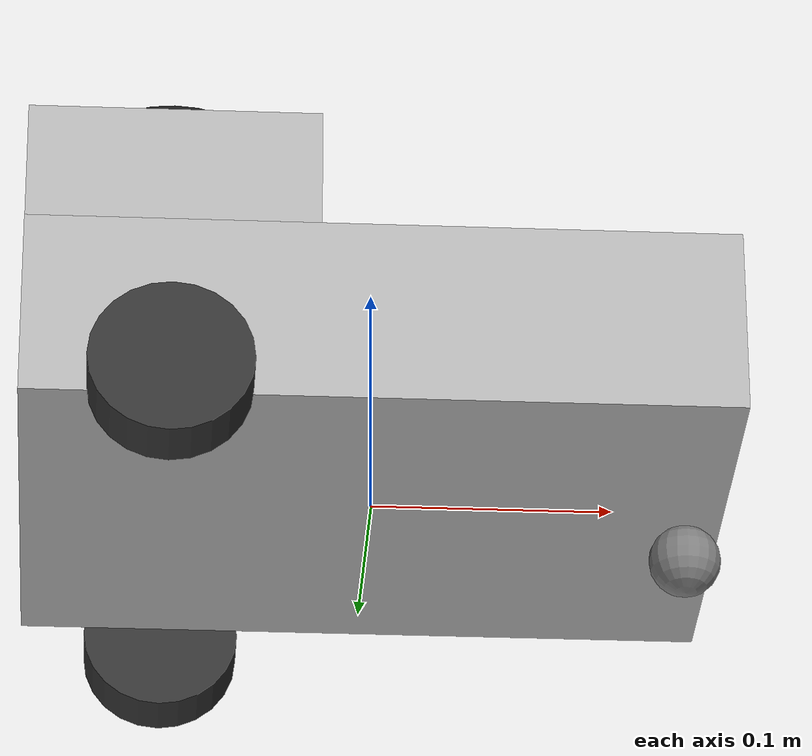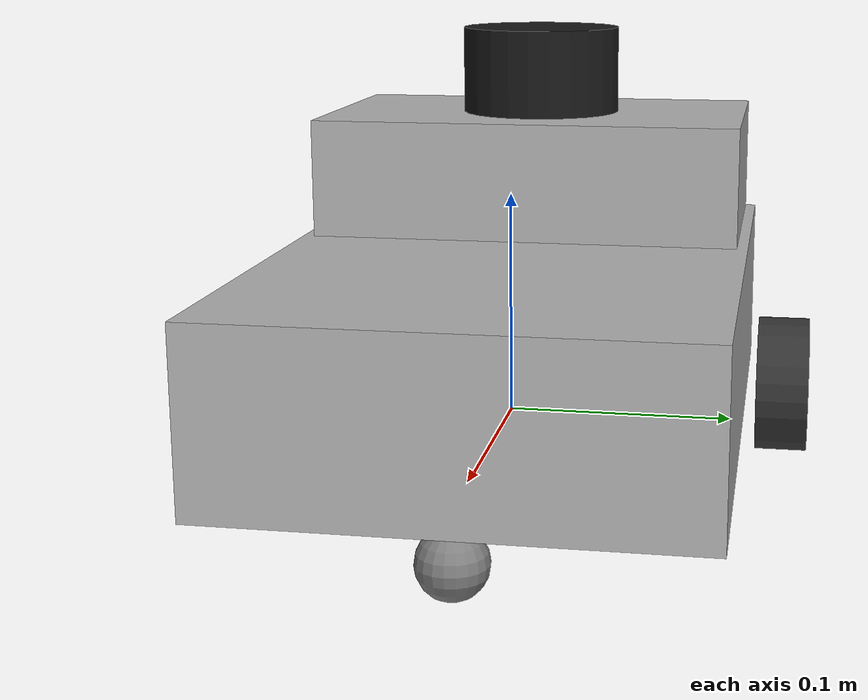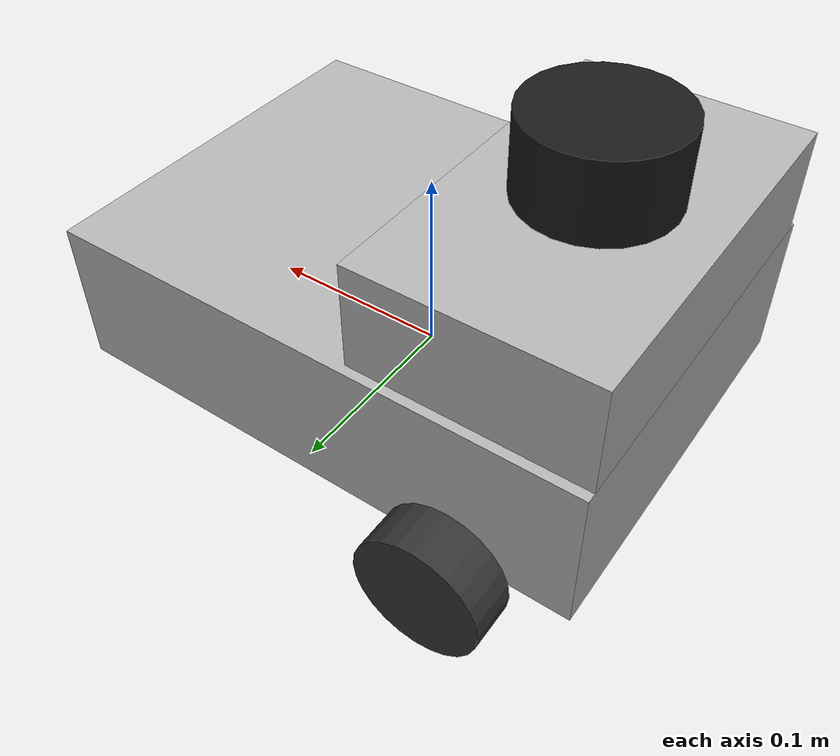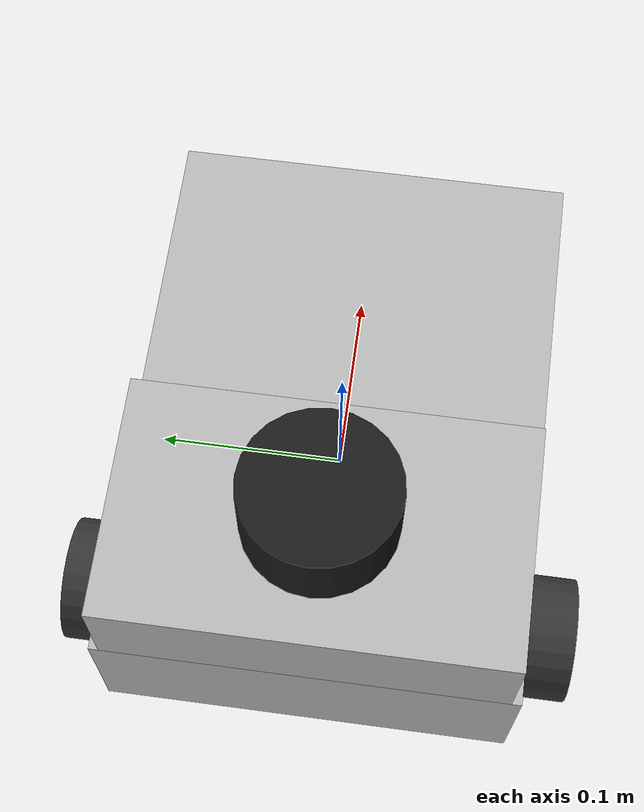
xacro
<?xml version="1.0"?>
<robot xmlns:xacro="http://www.ros.org/wiki/xacro" name="zyron">

  <!-- ─── Parameters ──────────────────────────────────────────── -->
  <xacro:arg name="is_sim" default="True"/>
  <xacro:arg name="mcu_serial_port" default="/dev/ttyUSB0"/>

  <!-- Robot dimensions (update to match your hardware) -->
  <xacro:property name="base_length"     value="0.290"/>
  <xacro:property name="base_width"      value="0.210"/>
  <xacro:property name="base_height"     value="0.080"/>
  <xacro:property name="wheel_radius"    value="0.033"/>
  <xacro:property name="wheel_width"     value="0.025"/>
  <xacro:property name="wheel_sep"       value="0.245"/>  <!-- centre-to-centre: inner wheel face is 5mm outside body wall -->
  <xacro:property name="caster_radius"   value="0.015"/>
  <xacro:property name="wheel_x_from_back" value="0.06"/>  <!-- wheels are 6cm from the back edge -->
  <!-- wheel x in base_link frame: back edge + offset -->
  <xacro:property name="wheel_x" value="${-base_length/2 + wheel_x_from_back}"/>

  <!-- Tower on top of base at the back (drive-wheel side), for lidar mount -->
  <xacro:property name="tower_length"    value="0.120"/>
  <xacro:property name="tower_width"     value="0.200"/>
  <xacro:property name="tower_height"    value="0.055"/>

  <!-- ─── base_footprint ─────────────────────────────────────── -->
  <link name="base_footprint"/>

  <joint name="base_footprint_joint" type="fixed">
    <parent link="base_footprint"/>
    <child  link="base_link"/>
    <origin xyz="0 0 ${wheel_radius}" rpy="0 0 0"/>
  </joint>

  <!-- ─── base_link ──────────────────────────────────────────── -->
  <link name="base_link">
    <inertial>
      <origin xyz="0 0 0" rpy="0 0 0"/>
      <mass value="1.0"/>
      <inertia ixx="0.00421" ixy="0" ixz="0" iyy="0.00754" iyz="0" izz="0.01068"/>
    </inertial>
    <visual>
      <origin xyz="0 0 0" rpy="0 0 0"/>
      <geometry>
        <box size="${base_length} ${base_width} ${base_height}"/>
      </geometry>
      <material name="light_grey">
        <color rgba="0.7 0.7 0.7 1.0"/>
      </material>
    </visual>
    <collision>
      <origin xyz="0 0 0" rpy="0 0 0"/>
      <geometry>
        <box size="${base_length} ${base_width} ${base_height}"/>
      </geometry>
    </collision>
  </link>

  <!-- ─── Tower (lidar mount platform, back of robot) ────────── -->
  <link name="tower_link">
    <inertial>
      <origin xyz="0 0 0" rpy="0 0 0"/>
      <mass value="0.2"/>
      <!-- Solid box inertia: I = m/12*(a²+b²) -->
      <inertia ixx="0.000327" ixy="0" ixz="0"
               iyy="0.000733" iyz="0"
               izz="0.000983"/>
    </inertial>
    <visual>
      <origin xyz="0 0 0" rpy="0 0 0"/>
      <geometry>
        <box size="${tower_length} ${tower_width} ${tower_height}"/>
      </geometry>
      <material name="light_grey">
        <color rgba="0.7 0.7 0.7 1.0"/>
      </material>
    </visual>
    <collision>
      <origin xyz="0 0 0" rpy="0 0 0"/>
      <geometry>
        <box size="${tower_length} ${tower_width} ${tower_height}"/>
      </geometry>
    </collision>
  </link>

  <!-- Tower sits on top of the base, flush with the back (-x) edge -->
  <!-- x: back edge of base + half tower length = -base_length/2 + tower_length/2 -->
  <!-- z: top of base + half tower height        =  base_height/2 + tower_height/2 -->
  <joint name="tower_joint" type="fixed">
    <parent link="base_link"/>
    <child  link="tower_link"/>
    <origin xyz="${-base_length/2 + tower_length/2} 0 ${base_height/2 + tower_height/2}" rpy="0 0 0"/>
  </joint>

  <!-- ─── Lidar (mounted on top of tower, centred) ────────────── -->
  <!-- Dimensions: RPLidar A1 approximate — adjust to your model   -->
  <xacro:property name="lidar_radius"  value="0.038"/>  <!-- 76mm diameter -->
  <xacro:property name="lidar_height"  value="0.041"/>  <!-- 41mm tall     -->

  <link name="lidar_link">
    <inertial>
      <origin xyz="0 0 0" rpy="0 0 0"/>
      <mass value="0.17"/>
      <!-- Solid cylinder: Ixx=Iyy=m/12*(3r²+h²), Izz=m/2*r² -->
      <inertia ixx="0.000086" ixy="0" ixz="0"
               iyy="0.000086" iyz="0"
               izz="0.000123"/>
    </inertial>
    <visual>
      <origin xyz="0 0 0" rpy="0 0 0"/>
      <geometry>
        <cylinder radius="${lidar_radius}" length="${lidar_height}"/>
      </geometry>
      <material name="black">
        <color rgba="0.1 0.1 0.1 1.0"/>
      </material>
    </visual>
    <collision>
      <origin xyz="0 0 0" rpy="0 0 0"/>
      <geometry>
        <cylinder radius="${lidar_radius}" length="${lidar_height}"/>
      </geometry>
    </collision>
  </link>

  <!-- Lidar sits centred on top of the tower                         -->
  <!-- z = tower_height/2 (top of tower) + lidar_height/2 (centre)   -->
  <joint name="lidar_joint" type="fixed">
    <parent link="tower_link"/>
    <child  link="lidar_link"/>
    <origin xyz="0 0 ${tower_height/2 + lidar_height/2}" rpy="0 0 0"/>
  </joint>

<link name="imu_link">
  <inertial>
    <origin xyz="0.0 0.0 0.0" rpy="0.0 0.0 0.0"/>
    <mass value="0.0"/>
    <inertia ixx="0.0" ixy="0.0" ixz="0.0" iyy="0.0" iyz="0.0" izz="0.0"/>
  </inertial>
  <visual name="">
    <origin xyz="0.0 0.0 0.0" rpy="0.0 0.0 0.0"/>
    <geometry>
      <box size="0.01 0.01 0.01"/>
    </geometry>
    <material name="">
      <color rgba="1.0 0.0 0.0 1.0"/>
      <texture filename=""/>
    </material>
  </visual>
  <collision>
    <origin xyz="0.0 0.0 0.0" rpy="0.0 0.0 0.0"/>
    <geometry>
      <box size="0.01 0.01 0.01"/>
    </geometry>
  </collision>
</link>

<joint name="imu_joint" type="fixed">
  <origin xyz="0.0 0.0 0.0" rpy="0.0 0.0 0.0"/>
  <parent link="base_link"/>
  <child link="imu_link"/>
  <axis xyz="0.0 0.0 0.0"/>
  <limit lower="0.0" upper="0.0" effort="0.0" velocity="0.0"/>
</joint>

  <!-- ─── Wheel macro ─────────────────────────────────────────── -->
  <xacro:macro name="wheel" params="name y_offset">
    <link name="${name}">
      <inertial>
        <origin xyz="0 0 0" rpy="0 0 0"/>
        <mass value="0.05"/>
        <inertia ixx="1.4e-5" ixy="0" ixz="0" iyy="1.4e-5" iyz="0" izz="2.6e-5"/>
      </inertial>
      <visual>
        <origin xyz="0 0 0" rpy="${pi/2} 0 0"/>
        <geometry>
          <cylinder radius="${wheel_radius}" length="${wheel_width}"/>
        </geometry>
        <material name="dark_grey">
          <color rgba="0.2 0.2 0.2 1.0"/>
        </material>
      </visual>
      <collision>
        <origin xyz="0 0 0" rpy="${pi/2} 0 0"/>
        <geometry>
          <cylinder radius="${wheel_radius}" length="${wheel_width}"/>
        </geometry>
      </collision>
    </link>
    <joint name="${name}_joint" type="continuous">
      <parent link="base_link"/>
      <child  link="${name}"/>
      <origin xyz="${wheel_x} ${y_offset} ${-base_height/2}" rpy="0 0 0"/>
      <axis xyz="0 1 0"/>
    </joint>
  </xacro:macro>

  <xacro:wheel name="wheel_left"  y_offset="${ wheel_sep/2}"/>
  <xacro:wheel name="wheel_right" y_offset="${-wheel_sep/2}"/>

  <!-- ─── Caster wheel ────────────────────────────────────────── -->
  <link name="caster_wheel">
    <inertial>
      <origin xyz="0 0 0" rpy="0 0 0"/>
      <mass value="0.02"/>
      <inertia ixx="1e-6" ixy="0" ixz="0" iyy="1e-6" iyz="0" izz="1e-6"/>
    </inertial>
    <visual>
      <origin xyz="0 0 0" rpy="0 0 0"/>
      <geometry><sphere radius="${caster_radius}"/></geometry>
      <material name="grey"><color rgba="0.5 0.5 0.5 1.0"/></material>
    </visual>
    <collision>
      <origin xyz="0 0 0" rpy="0 0 0"/>
      <geometry><sphere radius="${caster_radius}"/></geometry>
    </collision>
  </link>

  <joint name="caster_wheel_joint" type="fixed">
    <parent link="base_link"/>
    <child  link="caster_wheel"/>
    <origin xyz="${base_length/2 - caster_radius} 0 ${-base_height/2 - caster_radius + wheel_radius - wheel_radius}" rpy="0 0 0"/>
  </joint>

  <!-- ─── ros2_control block ──────────────────────────────────── -->
  <xacro:unless value="$(arg is_sim)">
    <ros2_control name="ZyronSystem" type="system">
      <hardware>
        <plugin>zyron_control/ZyronInterface</plugin>
        <param name="port">$(arg serial_port)</param>
        <param name="baud_rate">115200</param>

      </hardware>

      <joint name="wheel_left_joint">
        <command_interface name="velocity"/>
        <state_interface name="position"/>
        <state_interface name="velocity"/>
      </joint>

      <joint name="wheel_right_joint">
        <command_interface name="velocity"/>
        <state_interface name="position"/>
        <state_interface name="velocity"/>
      </joint>

      <sensor name="imu">
        <state_interface name="orientation.x"/>
        <state_interface name="orientation.y"/>
        <state_interface name="orientation.z"/>
        <state_interface name="orientation.w"/>
        <state_interface name="angular_velocity.x"/>
        <state_interface name="angular_velocity.y"/>
        <state_interface name="angular_velocity.z"/>
        <state_interface name="linear_acceleration.x"/>
        <state_interface name="linear_acceleration.y"/>
        <state_interface name="linear_acceleration.z"/>
      </sensor>
    </ros2_control>
  </xacro:unless>

  <!-- Simulation ros2_control block (Gazebo) -->
  <xacro:if value="${$(arg is_sim)}">
    <ros2_control name="ZyronSimSystem" type="system">
      <hardware>
        <plugin>gz_ros2_control/GazeboSimSystem</plugin>
      </hardware>
      <joint name="wheel_left_joint">
        <command_interface name="velocity"/>
        <state_interface name="position"/>
        <state_interface name="velocity"/>
      </joint>
      <joint name="wheel_right_joint">
        <command_interface name="velocity"/>
        <state_interface name="position"/>
        <state_interface name="velocity"/>
      </joint>
    </ros2_control>
  </xacro:if>

</robot>
